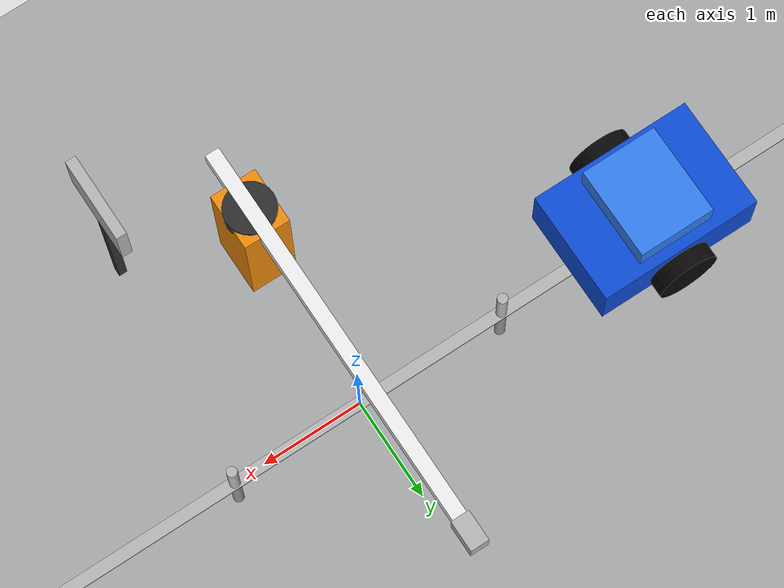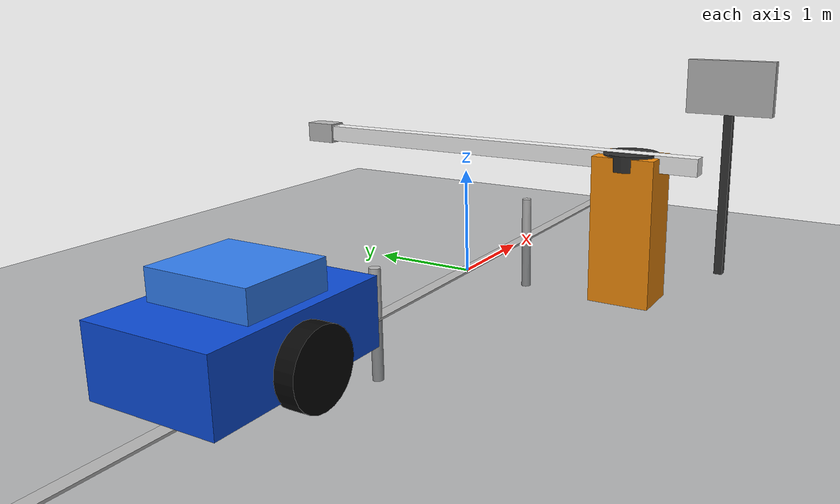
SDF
<?xml version="1.0" ?>
<sdf version="1.9">
  <world name="parking_world">
    <gravity>0 0 -9.81</gravity>
    <physics name="1ms" type="ignored"><max_step_size>0.001</max_step_size><real_time_factor>1.0</real_time_factor></physics>
    <plugin filename="gz-sim-physics-system" name="gz::sim::systems::Physics"/>
    <plugin filename="gz-sim-user-commands-system" name="gz::sim::systems::UserCommands"/>
    <plugin filename="gz-sim-scene-broadcaster-system" name="gz::sim::systems::SceneBroadcaster"/>
    <plugin filename="gz-sim-sensors-system" name="gz::sim::systems::Sensors"><render_engine>ogre2</render_engine></plugin>
    <light type="directional" name="sun"><cast_shadows>true</cast_shadows><pose>0 0 10 0 0 0</pose><diffuse>0.9 0.9 0.9 1</diffuse><specular>0.2 0.2 0.2 1</specular><direction>-0.4 0.1 -0.9</direction></light>

    <model name="ground"><static>true</static><link name="link"><collision name="collision"><geometry><plane><normal>0 0 1</normal><size>50 50</size></plane></geometry></collision><visual name="asphalt"><geometry><plane><normal>0 0 1</normal><size>50 50</size></plane></geometry><material><ambient>0.12 0.14 0.16 1</ambient><diffuse>0.18 0.20 0.22 1</diffuse></material></visual></link></model>
    <model name="road_marking"><static>true</static><link name="link"><visual name="line"><pose>0 0 0.012 0 0 0</pose><geometry><box><size>18 0.12 0.02</size></box></geometry><material><emissive>0.9 0.75 0.1 1</emissive></material></visual></link></model>
    <model name="parking_sign"><static>true</static><pose>1.1 -2.2 0 0 0 0</pose><link name="link"><visual name="post"><pose>0 0 1 0 0 0</pose><geometry><box><size>0.08 0.08 2</size></box></geometry><material><diffuse>0.2 0.2 0.2 1</diffuse></material></visual><visual name="sign"><pose>0 0 1.8 0 0 0</pose><geometry><box><size>0.1 0.8 0.5</size></box></geometry><material><emissive>0.1 0.35 0.9 1</emissive></material></visual></link></model>

    <model name="barrier" canonical_link="base">
      <pose>0 -1.65 0 0 0 0</pose>
      <link name="base"><gravity>false</gravity><visual name="housing"><pose>0 0 0.65 0 0 0</pose><geometry><box><size>0.45 0.55 1.3</size></box></geometry><material><diffuse>0.95 0.55 0.05 1</diffuse></material></visual><visual name="pivot_collar"><pose>0 0 1.25 0 0 0</pose><geometry><cylinder><radius>0.24</radius><length>0.14</length></cylinder></geometry><material><diffuse>0.18 0.18 0.18 1</diffuse></material></visual><collision name="housing_collision"><pose>0 0 0.65 0 0 0</pose><geometry><box><size>0.45 0.55 1.3</size></box></geometry></collision></link>
      <!-- One named frame is the sole source of truth for the physical hinge. -->
      <frame name="hinge" attached_to="base"><pose relative_to="base">0 0 1.25 0 0 0</pose></frame>
      <!-- The tip cap overlaps the far end,
           eliminating the visible seams at both ends while retaining one solid
           collision volume for the closed gate. -->
      <link name="arm"><pose relative_to="hinge">0 0 0 0 0 0</pose><inertial><pose>0 1.60 0 0 0 0</pose><mass>4</mass><inertia><ixx>3.975</ixx><iyy>0.014</iyy><izz>3.974</izz></inertia></inertial><visual name="boom"><pose>0 1.40 0 0 0 0</pose><geometry><box><size>0.14 4.00 0.15</size></box></geometry><material><diffuse>0.95 0.95 0.95 1</diffuse></material></visual><visual name="red_tip"><pose>0 3.35 0 0 0 0</pose><geometry><box><size>0.18 0.30 0.19</size></box></geometry><material><emissive>0.9 0.05 0.05 1</emissive></material></visual><collision name="arm_collision"><pose>0 1.60 0 0 0 0</pose><geometry><box><size>0.14 3.45 0.15</size></box></geometry></collision></link>
      <joint name="base_to_world" type="fixed"><parent>world</parent><child>base</child></joint>
      <joint name="barrier_joint" type="revolute"><parent>base</parent><child>arm</child><pose relative_to="hinge">0 0 0 0 0 0</pose><axis><xyz>1 0 0</xyz><limit><lower>0</lower><upper>1.57</upper><effort>250</effort><velocity>2</velocity></limit><dynamics><damping>12.0</damping></dynamics></axis></joint>
      <plugin filename="gz-sim-joint-position-controller-system" name="gz::sim::systems::JointPositionController"><joint_name>barrier_joint</joint_name><topic>/parking/barrier_command</topic><p_gain>100</p_gain><i_gain>0.0</i_gain><d_gain>12.0</d_gain></plugin>
    </model>

    <model name="vehicle">
      <!-- The model frame is on the road, so the 0.30 m radius wheels start in
           contact with it.  Raising the model here leaves both wheels airborne. -->
      <!-- Start in the visible approach lane; +X remains the route to the gate. -->
      <pose>-3.0 0 0 0 0 0</pose>
      <link name="chassis"><gravity>false</gravity><inertial><mass>40</mass><inertia><ixx>12</ixx><iyy>20</iyy><izz>20</izz></inertia></inertial><collision name="collision"><pose>0 0 0.4 0 0 0</pose><geometry><box><size>1.6 1.1 0.55</size></box></geometry></collision><visual name="body"><pose>0 0 0.4 0 0 0</pose><geometry><box><size>1.6 1.1 0.55</size></box></geometry><material><diffuse>0.05 0.3 0.85 1</diffuse></material></visual><visual name="roof"><pose>0 0 0.78 0 0 0</pose><geometry><box><size>0.75 0.9 0.28</size></box></geometry><material><diffuse>0.2 0.5 0.95 1</diffuse></material></visual></link>
      <link name="left_wheel"><gravity>false</gravity><pose>0 0.62 0.3 1.5708 0 0</pose><inertial><mass>2</mass><inertia><ixx>0.05</ixx><iyy>0.05</iyy><izz>0.05</izz></inertia></inertial><visual name="v"><geometry><cylinder><radius>0.3</radius><length>0.18</length></cylinder></geometry><material><diffuse>0.03 0.03 0.03 1</diffuse></material></visual></link>
      <link name="right_wheel"><gravity>false</gravity><pose>0 -0.62 0.3 1.5708 0 0</pose><inertial><mass>2</mass><inertia><ixx>0.05</ixx><iyy>0.05</iyy><izz>0.05</izz></inertia></inertial><visual name="v"><geometry><cylinder><radius>0.3</radius><length>0.18</length></cylinder></geometry><material><diffuse>0.03 0.03 0.03 1</diffuse></material></visual></link>
      <joint name="left_wheel_joint" type="fixed"><parent>chassis</parent><child>left_wheel</child></joint><joint name="right_wheel_joint" type="fixed"><parent>chassis</parent><child>right_wheel</child></joint>
      <!-- The car is a deterministic lidar target, not a drivetrain demo. -->
      <plugin filename="gz-sim-velocity-control-system" name="gz::sim::systems::VelocityControl"><topic>/model/vehicle/cmd_vel</topic></plugin>
    </model>

    <!-- Faces arriving vehicles (-X), so fixed barrier geometry behind it is excluded. -->
    <model name="approach_sensor"><static>true</static><pose>-1.5 0 0.45 0 0 3.14159</pose><link name="link"><inertial><mass>0.1</mass><inertia><ixx>0.00017</ixx><iyy>0.00017</iyy><izz>0.00017</izz></inertia></inertial><sensor name="approach_lidar" type="gpu_lidar"><topic>/parking/approach_scan</topic><update_rate>20</update_rate><lidar><scan><horizontal><samples>61</samples><resolution>1</resolution><min_angle>-0.52</min_angle><max_angle>0.52</max_angle></horizontal><vertical><samples>1</samples><resolution>1</resolution><min_angle>0</min_angle><max_angle>0</max_angle></vertical></scan><range><min>0.08</min><max>4.0</max><resolution>0.02</resolution></range></lidar><always_on>1</always_on><visualize>true</visualize></sensor><visual name="post"><pose>0 0 -0.5 0 0 0</pose><geometry><cylinder><radius>0.05</radius><length>1</length></cylinder></geometry><material><emissive>0.1 0.9 0.2 1</emissive></material></visual></link></model>
    <!-- Faces downstream (+X).  A vehicle must enter and then clear this gate before closing. -->
    <model name="passage_sensor"><static>true</static><pose>1.3 0 0.45 0 0 0</pose><link name="link"><inertial><mass>0.1</mass><inertia><ixx>0.00017</ixx><iyy>0.00017</iyy><izz>0.00017</izz></inertia></inertial><sensor name="passage_lidar" type="gpu_lidar"><topic>/parking/passage_scan</topic><update_rate>20</update_rate><lidar><scan><horizontal><samples>61</samples><resolution>1</resolution><min_angle>-0.52</min_angle><max_angle>0.52</max_angle></horizontal><vertical><samples>1</samples><resolution>1</resolution><min_angle>0</min_angle><max_angle>0</max_angle></vertical></scan><range><min>0.08</min><max>4.0</max><resolution>0.02</resolution></range></lidar><always_on>1</always_on><visualize>true</visualize></sensor><visual name="post"><pose>0 0 -0.5 0 0 0</pose><geometry><cylinder><radius>0.05</radius><length>1</length></cylinder></geometry><material><emissive>0.9 0.1 0.2 1</emissive></material></visual></link></model>
  </world>
</sdf>
